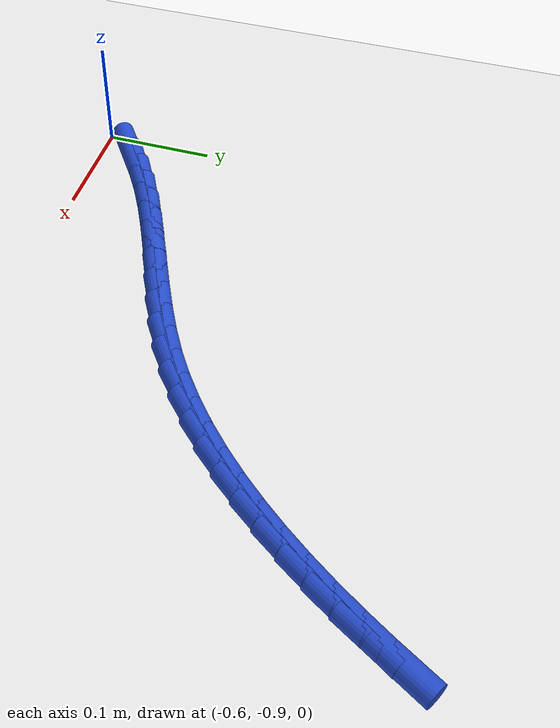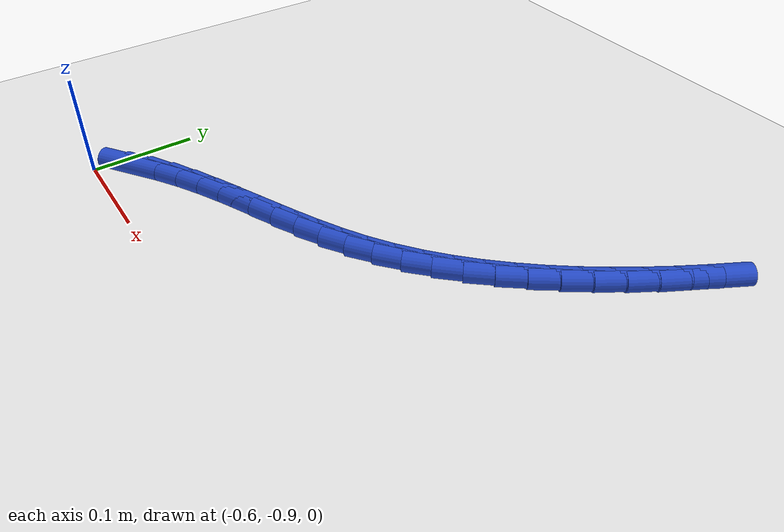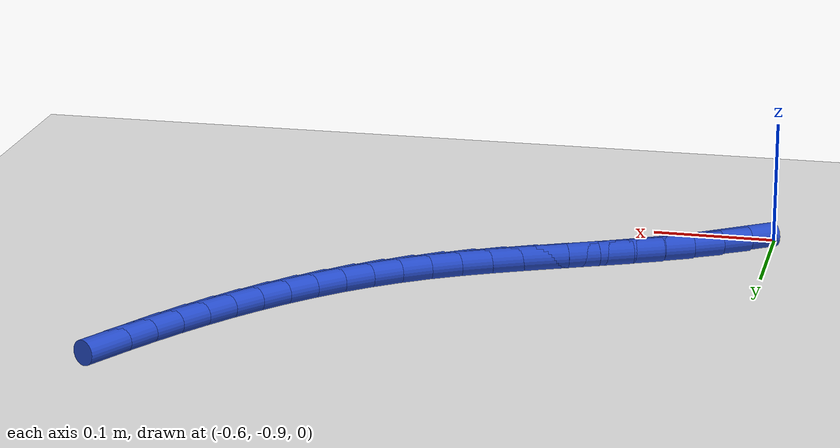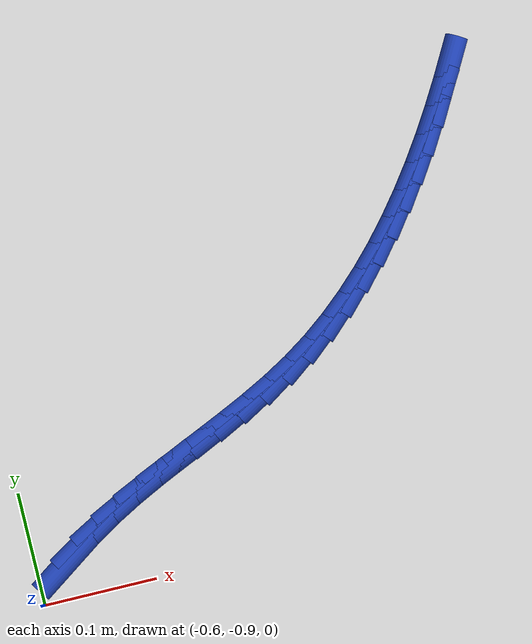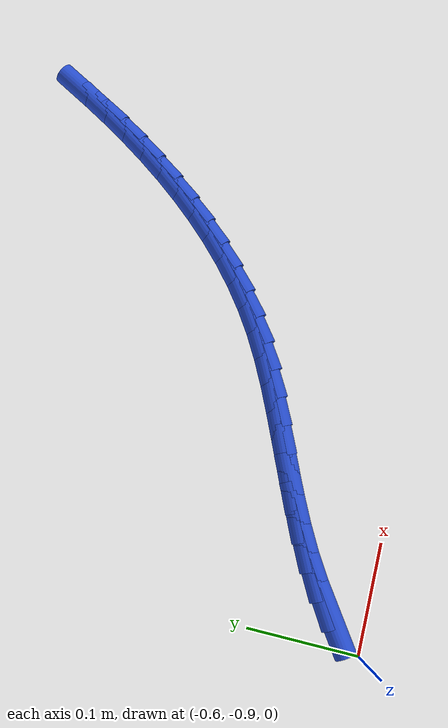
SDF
<sdf version="1.6">
 <world name="default">
  <model name="ground_plane">
   <static>1</static>
   <link name="link">
    <collision name="collision">
     <geometry><plane><normal>0 0 1</normal><size>100 100</size></plane></geometry>
     <surface><friction><ode><mu>100</mu><mu2>50</mu2></ode></friction></surface>
    </collision>
    <visual name="visual">
     <cast_shadows>0</cast_shadows>
     <geometry><plane><normal>0 0 1</normal><size>100 100</size></plane></geometry>
     <material>
      <script><uri>file://media/materials/scripts/gazebo.material</uri><name>Gazebo/WhiteGlow</name></script>
     </material>
    </visual>
   </link>
  </model>
  <model name="line">
   <link name="link_217">
    <pose>-0.5682158989335184 -0.8647994963427559 0.01 0 1.57 0.6032377019315128</pose>
    <collision name="collision">
     <geometry><cylinder><radius>0.01</radius><length>0.08</length></cylinder></geometry>
    </collision>
    <visual name="visual">
     <material>
      <script><name>Gazebo/Blue</name><uri>file://media/materials/scripts/gazebo.material</uri></script>
     </material>
     <geometry><cylinder><radius>0.01</radius><length>0.08</length></cylinder></geometry>
    </visual>
   </link>
   <link name="link_218">
    <pose>-0.5472671462610833 -0.85036789093069 0.01 0 1.57 0.5494684039163894</pose>
    <collision name="collision">
     <geometry><cylinder><radius>0.01</radius><length>0.08</length></cylinder></geometry>
    </collision>
    <visual name="visual">
     <material>
      <script><name>Gazebo/Blue</name><uri>file://media/materials/scripts/gazebo.material</uri></script>
     </material>
     <geometry><cylinder><radius>0.01</radius><length>0.08</length></cylinder></geometry>
    </visual>
   </link>
   <link name="link_219">
    <pose>-0.5255645850430858 -0.8370778060662815 0.01 0 1.57 0.4939837631150631</pose>
    <collision name="collision">
     <geometry><cylinder><radius>0.01</radius><length>0.08</length></cylinder></geometry>
    </collision>
    <visual name="visual">
     <material>
      <script><name>Gazebo/Blue</name><uri>file://media/materials/scripts/gazebo.material</uri></script>
     </material>
     <geometry><cylinder><radius>0.01</radius><length>0.08</length></cylinder></geometry>
    </visual>
   </link>
   <link name="link_220">
    <pose>-0.5030795059740801 -0.8249692261511689 0.01 0 1.57 0.4522117170243758</pose>
    <collision name="collision">
     <geometry><cylinder><radius>0.01</radius><length>0.08</length></cylinder></geometry>
    </collision>
    <visual name="visual">
     <material>
      <script><name>Gazebo/Blue</name><uri>file://media/materials/scripts/gazebo.material</uri></script>
     </material>
     <geometry><cylinder><radius>0.01</radius><length>0.08</length></cylinder></geometry>
    </visual>
   </link>
   <link name="link_221">
    <pose>-0.4800031287962561 -0.8137590499998606 0.01 0 1.57 0.4256134472025667</pose>
    <collision name="collision">
     <geometry><cylinder><radius>0.01</radius><length>0.08</length></cylinder></geometry>
    </collision>
    <visual name="visual">
     <material>
      <script><name>Gazebo/Blue</name><uri>file://media/materials/scripts/gazebo.material</uri></script>
     </material>
     <geometry><cylinder><radius>0.01</radius><length>0.08</length></cylinder></geometry>
    </visual>
   </link>
   <link name="link_222">
    <pose>-0.45655139848077586 -0.8031278539619325 0.01 0 1.57 0.413894219276749</pose>
    <collision name="collision">
     <geometry><cylinder><radius>0.01</radius><length>0.08</length></cylinder></geometry>
    </collision>
    <visual name="visual">
     <material>
      <script><name>Gazebo/Blue</name><uri>file://media/materials/scripts/gazebo.material</uri></script>
     </material>
     <geometry><cylinder><radius>0.01</radius><length>0.08</length></cylinder></geometry>
    </visual>
   </link>
   <link name="link_223">
    <pose>-0.43294025999880237 -0.7927562143869606 0.01 0 1.57 0.41690457146555665</pose>
    <collision name="collision">
     <geometry><cylinder><radius>0.01</radius><length>0.08</length></cylinder></geometry>
    </collision>
    <visual name="visual">
     <material>
      <script><name>Gazebo/Blue</name><uri>file://media/materials/scripts/gazebo.material</uri></script>
     </material>
     <geometry><cylinder><radius>0.01</radius><length>0.08</length></cylinder></geometry>
    </visual>
   </link>
   <link name="link_224">
    <pose>-0.4093856583214984 -0.782324707624521 0.01 0 1.57 0.43471409746481066</pose>
    <collision name="collision">
     <geometry><cylinder><radius>0.01</radius><length>0.08</length></cylinder></geometry>
    </collision>
    <visual name="visual">
     <material>
      <script><name>Gazebo/Blue</name><uri>file://media/materials/scripts/gazebo.material</uri></script>
     </material>
     <geometry><cylinder><radius>0.01</radius><length>0.08</length></cylinder></geometry>
    </visual>
   </link>
   <link name="link_225">
    <pose>-0.3861035384200269 -0.7715139100241897 0.01 0 1.57 0.4675940554688096</pose>
    <collision name="collision">
     <geometry><cylinder><radius>0.01</radius><length>0.08</length></cylinder></geometry>
    </collision>
    <visual name="visual">
     <material>
      <script><name>Gazebo/Blue</name><uri>file://media/materials/scripts/gazebo.material</uri></script>
     </material>
     <geometry><cylinder><radius>0.01</radius><length>0.08</length></cylinder></geometry>
    </visual>
   </link>
   <link name="link_226">
    <pose>-0.3633098452655505 -0.7600043979355425 0.01 0 1.57 0.5159042207276914</pose>
    <collision name="collision">
     <geometry><cylinder><radius>0.01</radius><length>0.08</length></cylinder></geometry>
    </collision>
    <visual name="visual">
     <material>
      <script><name>Gazebo/Blue</name><uri>file://media/materials/scripts/gazebo.material</uri></script>
     </material>
     <geometry><cylinder><radius>0.01</radius><length>0.08</length></cylinder></geometry>
    </visual>
   </link>
   <link name="link_227">
    <pose>-0.3412205238292321 -0.747476747708156 0.01 0 1.57 0.5783179301350432</pose>
    <collision name="collision">
     <geometry><cylinder><radius>0.01</radius><length>0.08</length></cylinder></geometry>
    </collision>
    <visual name="visual">
     <material>
      <script><name>Gazebo/Blue</name><uri>file://media/materials/scripts/gazebo.material</uri></script>
     </material>
     <geometry><cylinder><radius>0.01</radius><length>0.08</length></cylinder></geometry>
    </visual>
   </link>
   <link name="link_228">
    <pose>-0.320031226293676 -0.7336450734841449 0.01 0 1.57 0.6426062115521728</pose>
    <collision name="collision">
     <geometry><cylinder><radius>0.01</radius><length>0.08</length></cylinder></geometry>
    </collision>
    <visual name="visual">
     <material>
      <script><name>Gazebo/Blue</name><uri>file://media/materials/scripts/gazebo.material</uri></script>
     </material>
     <geometry><cylinder><radius>0.01</radius><length>0.08</length></cylinder></geometry>
    </visual>
   </link>
   <link name="link_229">
    <pose>-0.29977958795446585 -0.718484643143034 0.01 0 1.57 0.7027990385854371</pose>
    <collision name="collision">
     <geometry><cylinder><radius>0.01</radius><length>0.08</length></cylinder></geometry>
    </collision>
    <visual name="visual">
     <material>
      <script><name>Gazebo/Blue</name><uri>file://media/materials/scripts/gazebo.material</uri></script>
     </material>
     <geometry><cylinder><radius>0.01</radius><length>0.08</length></cylinder></geometry>
    </visual>
   </link>
   <link name="link_230">
    <pose>-0.2804291471039891 -0.7020931843196391 0.01 0 1.57 0.7586877827007487</pose>
    <collision name="collision">
     <geometry><cylinder><radius>0.01</radius><length>0.08</length></cylinder></geometry>
    </collision>
    <visual name="visual">
     <material>
      <script><name>Gazebo/Blue</name><uri>file://media/materials/scripts/gazebo.material</uri></script>
     </material>
     <geometry><cylinder><radius>0.01</radius><length>0.08</length></cylinder></geometry>
    </visual>
   </link>
   <link name="link_231">
    <pose>-0.2619430163509577 -0.6845691281741029 0.01 0 1.57 0.8102299025734716</pose>
    <collision name="collision">
     <geometry><cylinder><radius>0.01</radius><length>0.08</length></cylinder></geometry>
    </collision>
    <visual name="visual">
     <material>
      <script><name>Gazebo/Blue</name><uri>file://media/materials/scripts/gazebo.material</uri></script>
     </material>
     <geometry><cylinder><radius>0.01</radius><length>0.08</length></cylinder></geometry>
    </visual>
   </link>
   <link name="link_232">
    <pose>-0.2442843083040841 -0.6660109058665687 0.01 0 1.57 0.8574851032402077</pose>
    <collision name="collision">
     <geometry><cylinder><radius>0.01</radius><length>0.08</length></cylinder></geometry>
    </collision>
    <visual name="visual">
     <material>
      <script><name>Gazebo/Blue</name><uri>file://media/materials/scripts/gazebo.material</uri></script>
     </material>
     <geometry><cylinder><radius>0.01</radius><length>0.08</length></cylinder></geometry>
    </visual>
   </link>
   <link name="link_233">
    <pose>-0.22741613557208104 -0.6465169485571794 0.01 0 1.57 0.9005848858912153</pose>
    <collision name="collision">
     <geometry><cylinder><radius>0.01</radius><length>0.08</length></cylinder></geometry>
    </collision>
    <visual name="visual">
     <material>
      <script><name>Gazebo/Blue</name><uri>file://media/materials/scripts/gazebo.material</uri></script>
     </material>
     <geometry><cylinder><radius>0.01</radius><length>0.08</length></cylinder></geometry>
    </visual>
   </link>
   <link name="link_234">
    <pose>-0.211301610763661 -0.6261856874060783 0.01 0 1.57 0.9397058391696009</pose>
    <collision name="collision">
     <geometry><cylinder><radius>0.01</radius><length>0.08</length></cylinder></geometry>
    </collision>
    <visual name="visual">
     <material>
      <script><name>Gazebo/Blue</name><uri>file://media/materials/scripts/gazebo.material</uri></script>
     </material>
     <geometry><cylinder><radius>0.01</radius><length>0.08</length></cylinder></geometry>
    </visual>
   </link>
   <link name="link_235">
    <pose>-0.19590384648753667 -0.6051155535734082 0.01 0 1.57 0.9750478487930948</pose>
    <collision name="collision">
     <geometry><cylinder><radius>0.01</radius><length>0.08</length></cylinder></geometry>
    </collision>
    <visual name="visual">
     <material>
      <script><name>Gazebo/Blue</name><uri>file://media/materials/scripts/gazebo.material</uri></script>
     </material>
     <geometry><cylinder><radius>0.01</radius><length>0.08</length></cylinder></geometry>
    </visual>
   </link>
   <link name="link_236">
    <pose>-0.18118595535242013 -0.5834049782193119 0.01 0 1.57 1.0068172716395398</pose>
    <collision name="collision">
     <geometry><cylinder><radius>0.01</radius><length>0.08</length></cylinder></geometry>
    </collision>
    <visual name="visual">
     <material>
      <script><name>Gazebo/Blue</name><uri>file://media/materials/scripts/gazebo.material</uri></script>
     </material>
     <geometry><cylinder><radius>0.01</radius><length>0.08</length></cylinder></geometry>
    </visual>
   </link>
   <link name="link_237">
    <pose>-0.1671110499670249 -0.5611523925039337 0.01 0 1.57 1.0352144841483295</pose>
    <collision name="collision">
     <geometry><cylinder><radius>0.01</radius><length>0.08</length></cylinder></geometry>
    </collision>
    <visual name="visual">
     <material>
      <script><name>Gazebo/Blue</name><uri>file://media/materials/scripts/gazebo.material</uri></script>
     </material>
     <geometry><cylinder><radius>0.01</radius><length>0.08</length></cylinder></geometry>
    </visual>
   </link>
   <link name="link_238">
    <pose>-0.15364224294006307 -0.5384562275874158 0.01 0 1.57 1.0604249447833372</pose>
    <collision name="collision">
     <geometry><cylinder><radius>0.01</radius><length>0.08</length></cylinder></geometry>
    </collision>
    <visual name="visual">
     <material>
      <script><name>Gazebo/Blue</name><uri>file://media/materials/scripts/gazebo.material</uri></script>
     </material>
     <geometry><cylinder><radius>0.01</radius><length>0.08</length></cylinder></geometry>
    </visual>
   </link>
  </model>
 </world>
</sdf>
